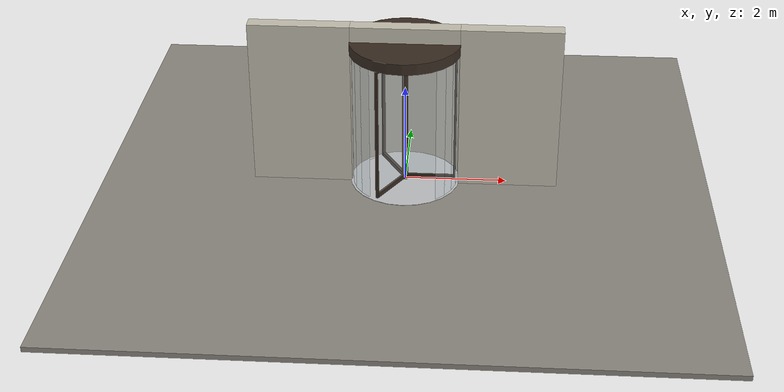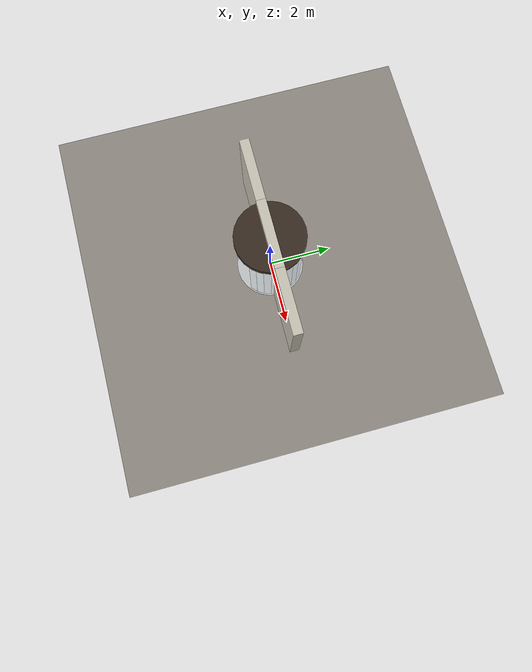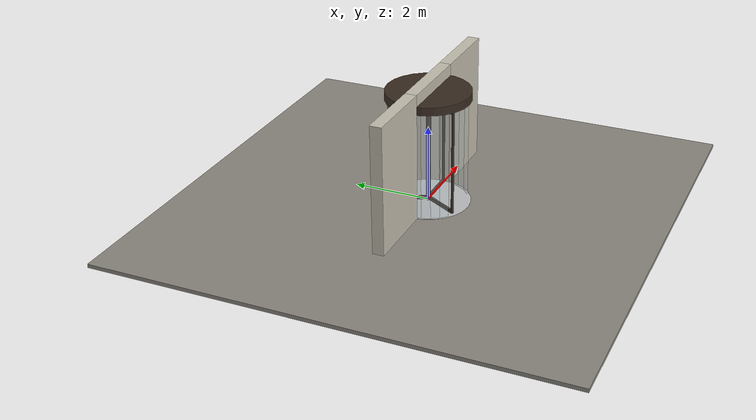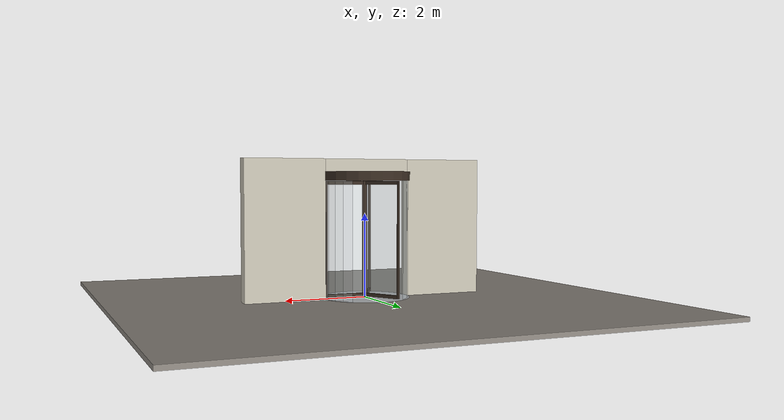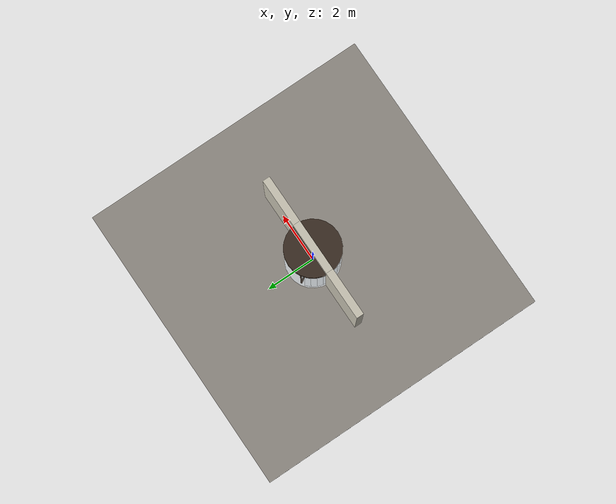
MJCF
<?xml version="1.0" ?>
<mujoco model="db0085_revolving_full">
  <compiler angle="radian" meshdir="../../hardware" texturedir="../../textures" autolimits="true" inertiafromgeom="false"/>
  <option timestep="0.002" integrator="implicitfast" cone="elliptic" impratio="10" noslip_iterations="3">
    <flag multiccd="enable"/>
  </option>
  <size memory="16M"/>
  <default>
    <geom condim="4" solref="0.005 1" solimp="0.95 0.99 0.001"/>
    <joint solreflimit="0.005 1" solimplimit="0.95 0.99 0.001"/>
    <tendon solreflimit="0.005 1"/>
    <equality solref="0.002 1"/>
  </default>
  <visual>
    <headlight ambient="0.4 0.4 0.4" diffuse="0.7 0.7 0.7" specular="0.2 0.2 0.2"/>
    <quality shadowsize="4096"/>
    <map znear="0.01" zfar="60"/>
  </visual>
  <asset>
    <material name="mat_floor" rgba="0.55 0.53 0.5 1" specular="0.2" shininess="0.15" reflectance="0"/>
    <material name="mat_wall" rgba="0.78 0.76 0.7 1" specular="0.2" shininess="0.1" reflectance="0"/>
    <material name="mat_frame" rgba="0.22 0.17 0.13 1" specular="0.8" shininess="0.6" reflectance="0.4"/>
    <material name="mat_drum_glass" rgba="0.85 0.92 0.95 0.25" specular="0.2" shininess="0.95" reflectance="0.1"/>
    <material name="mat_floor_ring" rgba="0.75 0.76 0.77 1" specular="0.8" shininess="0.65" reflectance="0.4"/>
    <texture name="skybox" type="skybox" builtin="gradient" rgb1="0.6 0.7 0.85" rgb2="0.9 0.92 0.95" width="256" height="256"/>
  </asset>
  <worldbody>
    <light name="sun" pos="1.5 -2.5 4" dir="-0.3 0.5 -0.8" directional="true" diffuse="0.8 0.8 0.8" specular="0.3 0.3 0.3" castshadow="true"/>
    <light name="fill" pos="-1.5 2.5 3" dir="0.3 -0.5 -0.7" directional="true" diffuse="0.35 0.35 0.4" castshadow="false"/>
    <camera name="robot_view" pos="0 -3.4375 2.4625" xyaxes="1 0 0 0 0.26963 0.962964" fovy="52"/>
    <camera name="far_view" pos="0 3.4375 2.4625" xyaxes="-1 0 0 0 -0.26963 0.962964" fovy="52"/>
    <camera name="iso" pos="2.6125 -2.8875 3.0125" xyaxes="0.741536 0.670913 0 -0.242917 0.268487 0.932151" fovy="46"/>
    <camera name="detail_handle" pos="0.55 -1.1 1.35" xyaxes="0.975133 0.221621 0 -0.065674 0.288965 0.955084" fovy="38"/>
    <geom name="floor" type="box" size="6 6 0.05" pos="0 0 -0.05" material="mat_floor" group="0" contype="1" conaffinity="1" friction="0.8 0.005 0.0001" density="2400"/>
    <geom name="wall_left" type="box" size="0.975 0.15 1.65" pos="-2.025 0 1.65" material="mat_wall" group="0" contype="1" conaffinity="1" friction="0.6 0.005 0.0001" density="800"/>
    <geom name="wall_right" type="box" size="0.975 0.15 1.65" pos="2.025 0 1.65" material="mat_wall" group="0" contype="1" conaffinity="1" friction="0.6 0.005 0.0001" density="800"/>
    <geom name="wall_header" type="box" size="1.05 0.15 0.15" pos="0 0 3.15" material="mat_wall" group="0" contype="1" conaffinity="1" friction="0.6 0.005 0.0001" density="800"/>
    <geom name="drum_0" type="box" size="0.116444 0.006 1.3925" pos="1.013586 0.114204 1.3925" quat="0.666347 0 0 0.745642" material="mat_drum_glass" group="0" contype="1" conaffinity="1" friction="0.6 0.005 0.0001" density="2500"/>
    <geom name="drum_1" type="box" size="0.116444 0.006 1.3925" pos="0.962761 0.336885 1.3925" quat="0.578671 0 0 0.815561" material="mat_drum_glass" group="0" contype="1" conaffinity="1" friction="0.6 0.005 0.0001" density="2500"/>
    <geom name="drum_2" type="box" size="0.116444 0.006 1.3925" pos="0.863659 0.542673 1.3925" quat="0.483719 0 0 0.875223" material="mat_drum_glass" group="0" contype="1" conaffinity="1" friction="0.6 0.005 0.0001" density="2500"/>
    <geom name="drum_3" type="box" size="0.116444 0.006 1.3925" pos="0.721249 0.721249 1.3925" quat="0.382683 0 0 0.92388" material="mat_drum_glass" group="0" contype="1" conaffinity="1" friction="0.6 0.005 0.0001" density="2500"/>
    <geom name="drum_10" type="box" size="0.116444 0.006 1.3925" pos="-0.721249 0.721249 1.3925" quat="-0.382683 0 0 0.92388" material="mat_drum_glass" group="0" contype="1" conaffinity="1" friction="0.6 0.005 0.0001" density="2500"/>
    <geom name="drum_11" type="box" size="0.116444 0.006 1.3925" pos="-0.863659 0.542673 1.3925" quat="-0.483719 0 0 0.875223" material="mat_drum_glass" group="0" contype="1" conaffinity="1" friction="0.6 0.005 0.0001" density="2500"/>
    <geom name="drum_12" type="box" size="0.116444 0.006 1.3925" pos="-0.962761 0.336885 1.3925" quat="-0.578671 0 0 0.815561" material="mat_drum_glass" group="0" contype="1" conaffinity="1" friction="0.6 0.005 0.0001" density="2500"/>
    <geom name="drum_13" type="box" size="0.116444 0.006 1.3925" pos="-1.013586 0.114204 1.3925" quat="-0.666347 0 0 0.745642" material="mat_drum_glass" group="0" contype="1" conaffinity="1" friction="0.6 0.005 0.0001" density="2500"/>
    <geom name="drum_14" type="box" size="0.116444 0.006 1.3925" pos="-1.013586 -0.114204 1.3925" quat="-0.745642 0 0 0.666347" material="mat_drum_glass" group="0" contype="1" conaffinity="1" friction="0.6 0.005 0.0001" density="2500"/>
    <geom name="drum_15" type="box" size="0.116444 0.006 1.3925" pos="-0.962761 -0.336885 1.3925" quat="-0.815561 0 0 0.578671" material="mat_drum_glass" group="0" contype="1" conaffinity="1" friction="0.6 0.005 0.0001" density="2500"/>
    <geom name="drum_16" type="box" size="0.116444 0.006 1.3925" pos="-0.863659 -0.542673 1.3925" quat="-0.875223 0 0 0.483719" material="mat_drum_glass" group="0" contype="1" conaffinity="1" friction="0.6 0.005 0.0001" density="2500"/>
    <geom name="drum_17" type="box" size="0.116444 0.006 1.3925" pos="-0.721249 -0.721249 1.3925" quat="-0.92388 0 0 0.382683" material="mat_drum_glass" group="0" contype="1" conaffinity="1" friction="0.6 0.005 0.0001" density="2500"/>
    <geom name="drum_24" type="box" size="0.116444 0.006 1.3925" pos="0.721249 -0.721249 1.3925" quat="-0.92388 0 0 -0.382683" material="mat_drum_glass" group="0" contype="1" conaffinity="1" friction="0.6 0.005 0.0001" density="2500"/>
    <geom name="drum_25" type="box" size="0.116444 0.006 1.3925" pos="0.863659 -0.542673 1.3925" quat="-0.875223 0 0 -0.483719" material="mat_drum_glass" group="0" contype="1" conaffinity="1" friction="0.6 0.005 0.0001" density="2500"/>
    <geom name="drum_26" type="box" size="0.116444 0.006 1.3925" pos="0.962761 -0.336885 1.3925" quat="-0.815561 0 0 -0.578671" material="mat_drum_glass" group="0" contype="1" conaffinity="1" friction="0.6 0.005 0.0001" density="2500"/>
    <geom name="drum_27" type="box" size="0.116444 0.006 1.3925" pos="1.013586 -0.114204 1.3925" quat="-0.745642 0 0 -0.666347" material="mat_drum_glass" group="0" contype="1" conaffinity="1" friction="0.6 0.005 0.0001" density="2500"/>
    <geom name="drum_canopy" type="cylinder" size="1.08 0.1075" pos="0 0 2.8925" material="mat_frame" group="0" contype="1" conaffinity="1" friction="0.6 0.005 0.0001" density="300"/>
    <geom name="rotor_top_bearing" type="cylinder" size="0.075 0.003" pos="0 0 2.782" material="mat_frame" group="0" contype="1" conaffinity="1" friction="0.6 0.005 0.0001" density="2700"/>
    <geom name="drum_floor_ring" type="cylinder" size="1.08 0.003" pos="0 0 0.003" material="mat_floor_ring" group="1" contype="0" conaffinity="0" density="7900"/>
    <geom name="rotor_floor_pivot" type="cylinder" size="0.075 0.003" pos="0 0 0.009" material="mat_frame" group="0" contype="1" conaffinity="1" friction="0.6 0.005 0.0001" density="2700"/>
    <site name="approach_point" pos="0 -2 0" quat="1 0 0 0" size="0.05" rgba="0.2 0.9 0.2 0.5" group="4"/>
    <site name="goal_point" pos="0 2 0" quat="1 0 0 0" size="0.05" rgba="0.2 0.9 0.2 0.5" group="4"/>
    <site name="door_plane_center" pos="0 0 1.35" quat="1 0 0 0" size="0.02" rgba="0.2 0.9 0.2 0.5" group="4"/>
    <body name="rotor" pos="0 0 0">
      <inertial pos="0 0 1.397476" mass="198.975" quat="0.5 -0.5 -0.5 -0.5" diaginertia="67.45355294 193.867101917 193.867101917"/>
      <joint name="rotor_hinge" type="hinge" axis="0 0 1" limited="false" damping="52" frictionloss="4.58543" armature="0.5"/>
      <geom name="rotor_shaft" type="cylinder" size="0.06 1.375" pos="0 0 1.395" material="mat_frame" group="0" contype="1" conaffinity="1" friction="0.6 0.005 0.0001" density="2700"/>
      <geom name="rotor_pintle_b" type="cylinder" size="0.03 0.008" pos="0 0 0.016" material="mat_frame" group="1" contype="0" conaffinity="0" density="2700"/>
      <geom name="rotor_pintle_t" type="cylinder" size="0.03 0.0085" pos="0 0 2.7745" material="mat_frame" group="1" contype="0" conaffinity="0" density="2700"/>
      <geom name="wing_0_glass" type="box" size="0.48 0.005 1.3" pos="0.5 0 1.4" material="mat_drum_glass" group="0" contype="1" conaffinity="1" friction="0.6 0.005 0.0001" density="2500"/>
      <geom name="wing_0_stile" type="box" size="0.02 0.03 1.375" pos="0.98 0 1.395" material="mat_frame" group="0" contype="1" conaffinity="1" friction="0.6 0.005 0.0001" density="2700"/>
      <geom name="wing_0_rail_b" type="box" size="0.48 0.03 0.04" pos="0.48 0 0.06" material="mat_frame" group="0" contype="1" conaffinity="1" friction="0.6 0.005 0.0001" density="2700"/>
      <geom name="wing_0_rail_t" type="box" size="0.48 0.03 0.04" pos="0.48 0 2.73" material="mat_frame" group="0" contype="1" conaffinity="1" friction="0.6 0.005 0.0001" density="2700"/>
      <geom name="wing_1_glass" type="box" size="0.48 0.005 1.3" pos="-0.25 0.433013 1.4" quat="0.5 0 0 0.866025" material="mat_drum_glass" group="0" contype="1" conaffinity="1" friction="0.6 0.005 0.0001" density="2500"/>
      <geom name="wing_1_stile" type="box" size="0.02 0.03 1.375" pos="-0.49 0.848705 1.395" quat="0.5 0 0 0.866025" material="mat_frame" group="0" contype="1" conaffinity="1" friction="0.6 0.005 0.0001" density="2700"/>
      <geom name="wing_1_rail_b" type="box" size="0.48 0.03 0.04" pos="-0.24 0.415692 0.06" quat="0.5 0 0 0.866025" material="mat_frame" group="0" contype="1" conaffinity="1" friction="0.6 0.005 0.0001" density="2700"/>
      <geom name="wing_1_rail_t" type="box" size="0.48 0.03 0.04" pos="-0.24 0.415692 2.73" quat="0.5 0 0 0.866025" material="mat_frame" group="0" contype="1" conaffinity="1" friction="0.6 0.005 0.0001" density="2700"/>
      <geom name="wing_2_glass" type="box" size="0.48 0.005 1.3" pos="-0.25 -0.433013 1.4" quat="-0.5 0 0 0.866025" material="mat_drum_glass" group="0" contype="1" conaffinity="1" friction="0.6 0.005 0.0001" density="2500"/>
      <geom name="wing_2_stile" type="box" size="0.02 0.03 1.375" pos="-0.49 -0.848705 1.395" quat="-0.5 0 0 0.866025" material="mat_frame" group="0" contype="1" conaffinity="1" friction="0.6 0.005 0.0001" density="2700"/>
      <geom name="wing_2_rail_b" type="box" size="0.48 0.03 0.04" pos="-0.24 -0.415692 0.06" quat="-0.5 0 0 0.866025" material="mat_frame" group="0" contype="1" conaffinity="1" friction="0.6 0.005 0.0001" density="2700"/>
      <geom name="wing_2_rail_t" type="box" size="0.48 0.03 0.04" pos="-0.24 -0.415692 2.73" quat="-0.5 0 0 0.866025" material="mat_frame" group="0" contype="1" conaffinity="1" friction="0.6 0.005 0.0001" density="2700"/>
    </body>
  </worldbody>
  <sensor>
    <jointpos name="rotor_hinge_pos" joint="rotor_hinge"/>
    <jointvel name="rotor_hinge_vel" joint="rotor_hinge"/>
  </sensor>
</mujoco>
